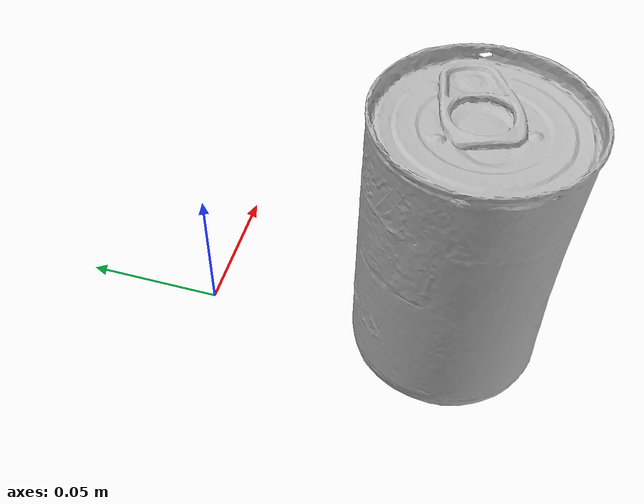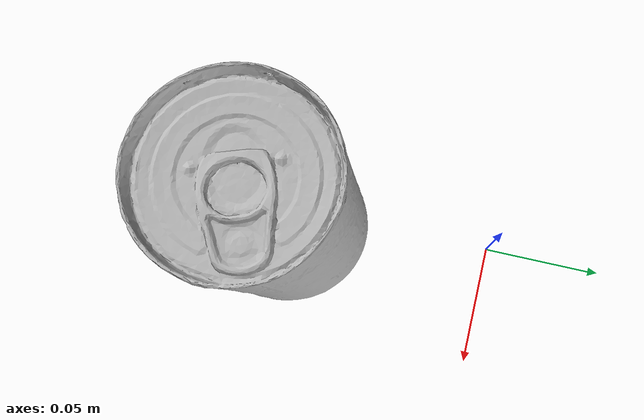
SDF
<?xml version="1.0"?>
<sdf version="1.6">
  <model name="tomato_soup_can">
    <link name="link">
      <inertial>
        <mass>0.349</mass>
      </inertial>
      <collision name="collision">
        <pose>0 0 0.0505 0 0 0</pose>
        <geometry>
          <cylinder>
            <radius>0.033</radius>
            <length>0.101</length>
          </cylinder>
        </geometry>
      </collision>
      <visual name="visual">
        <pose>0.01 -0.085 0 0 0 0</pose>
        <geometry>
          <mesh>
            <uri>model://tomato_soup_can/meshes/textured.dae</uri>
          </mesh>
        </geometry>
      </visual>
    </link>
  </model>
</sdf>
